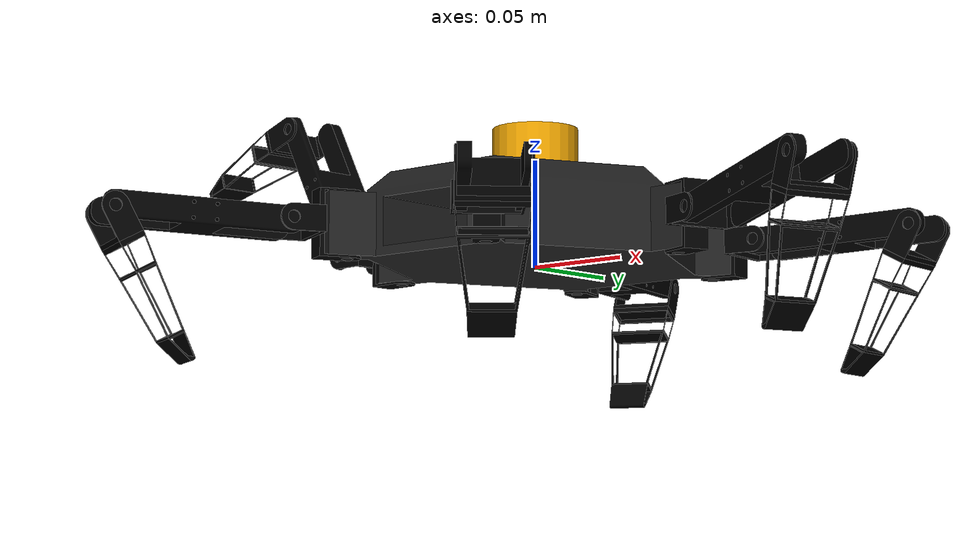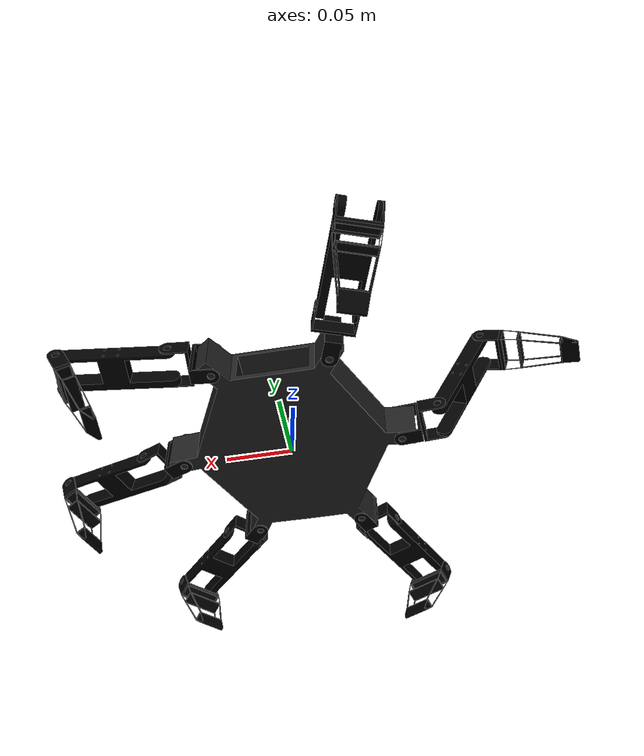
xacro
<?xml version="1.0" ?>
<robot name="hexapod" xmlns:xacro="http://www.ros.org/wiki/xacro">

  <xacro:property name="base_mass" value="1.0"/>
  <xacro:property name="base_length" value="0.3"/>
  <xacro:property name="base_width" value="0.2"/>
  <xacro:property name="base_height" value="0.1"/>

  <xacro:property name="leg_segment_mass" value="0.9"/>
  <xacro:property name="leg_connector_mass" value="0.5"/>
  <xacro:property name="leg_segment_dim" value="0.05"/>

  <xacro:property name="dummy_mass" value="0.1"/>

  <xacro:macro name="box_inertial" params="mass x y z *origin">
    <inertial>
      <xacro:insert_block name="origin"/>
      <mass value="${mass}"/>
      <inertia ixx="${(mass/12) * (y*y + z*z)}" ixy="0.0" ixz="0.0"
               iyy="${(mass/12) * (x*x + z*z)}" iyz="0.0"
               izz="${(mass/12) * (x*x + y*y)}"/>
    </inertial>
  </xacro:macro>

  <xacro:macro name="dummy_inertial">
    <inertial>
      <origin xyz="0 0 0" rpy="0 0 0"/>
      <mass value="${dummy_mass}"/>
      <inertia ixx="1e-06" ixy="0.0" ixz="0.0" iyy="1e-06" iyz="0.0" izz="1e-06"/>
    </inertial>
  </xacro:macro>

  <xacro:include filename="$(find hexapod_description)/urdf/lidar.xacro"/>
  <xacro:lidar parent_link="part_1"/>

  <link name="part_1">
    <xacro:box_inertial mass="${base_mass}" x="${base_length}" y="${base_width}" z="${base_height}">
      <origin xyz="0 0 0" rpy="0 0 0"/>
    </xacro:box_inertial>
  </link>

  <link name="part_1_2"><xacro:dummy_inertial/></link>
  <link name="part_1_3"><xacro:dummy_inertial/></link>
  <link name="part_1_4"><xacro:dummy_inertial/></link>
  <link name="part_1_5"><xacro:dummy_inertial/></link>
  <link name="part_1_6"><xacro:dummy_inertial/></link>
  <link name="part_1_7"><xacro:dummy_inertial/></link>
  <link name="part_1_8"><xacro:dummy_inertial/></link>
  <link name="part_1_9"><xacro:dummy_inertial/></link>
  <link name="part_1_10"><xacro:dummy_inertial/></link>
  <link name="part_1_11"><xacro:dummy_inertial/></link>
  <link name="part_1_12"><xacro:dummy_inertial/></link>
  <link name="part_1_13"><xacro:dummy_inertial/></link>
  <link name="part_1_14"><xacro:dummy_inertial/></link>
  <link name="part_1_15"><xacro:dummy_inertial/></link>
  <link name="part_1_16"><xacro:dummy_inertial/></link>
  <link name="part_1_17"><xacro:dummy_inertial/></link>
  <link name="part_1_18"><xacro:dummy_inertial/></link>
  <link name="part_1_19"><xacro:dummy_inertial/></link>

  <link name="part_1_3_part_1_4">
    <xacro:box_inertial mass="${leg_connector_mass}" x="${leg_segment_dim}" y="${leg_segment_dim}" z="${leg_segment_dim}"><origin xyz="-3.99804e-05 -0.000637011 -0.00633873" rpy="0 0 0"/></xacro:box_inertial>
    <visual><origin xyz="0 0 -0" rpy="-0 -0 -0"/><geometry><mesh filename="package://hexapod_description/assets/part_1__3.stl"/></geometry><material name="part_1_4_material"><color rgba="0 0 0 1"/></material></visual>
    <collision><origin xyz="0 0 -0" rpy="-0 -0 -0"/><geometry><mesh filename="package://hexapod_description/assets/part_1__3.stl"/></geometry></collision>
  </link>
  <joint name="part_1_3_part_1_4_fixed" type="fixed"><origin xyz="-0 -0.0618 0.014594" rpy="-1.5708 1.5708 0"/><parent link="part_1_3"/><child link="part_1_3_part_1_4"/><axis xyz="0 0 1"/></joint>

  <link name="part_1_3_part_1_5">
    <xacro:box_inertial mass="${leg_connector_mass}" x="${leg_segment_dim}" y="${leg_segment_dim}" z="${leg_segment_dim}"><origin xyz="0.0159244 -0 0.0040152" rpy="0 0 0"/></xacro:box_inertial>
    <visual><origin xyz="0 -0 0" rpy="0 0 -0"/><geometry><mesh filename="package://hexapod_description/assets/part_1.stl"/></geometry><material name="part_1_5_material"><color rgba="0 0 0 1"/></material></visual>
    <collision><origin xyz="0 -0 0" rpy="0 0 -0"/><geometry><mesh filename="package://hexapod_description/assets/part_1.stl"/></geometry></collision>
  </link>
  <joint name="part_1_3_part_1_5_fixed" type="fixed"><origin xyz="0 -0.015 -0.000905985" rpy="-1.5708 -1.5708 0"/><parent link="part_1_3"/><child link="part_1_3_part_1_5"/><axis xyz="0 0 1"/></joint>

  <link name="part_1_3_part_1_6">
    <xacro:box_inertial mass="${leg_connector_mass}" x="${leg_segment_dim}" y="${leg_segment_dim}" z="${leg_segment_dim}"><origin xyz="0.000220525 -2.39822e-05 -0.0159862" rpy="0 0 0"/></xacro:box_inertial>
    <visual><origin xyz="-0 0 0" rpy="0 0 0"/><geometry><mesh filename="package://hexapod_description/assets/part_1__4.stl"/></geometry><material name="part_1_6_material"><color rgba="0 0 0 1"/></material></visual>
    <collision><origin xyz="-0 0 0" rpy="0 0 0"/><geometry><mesh filename="package://hexapod_description/assets/part_1__4.stl"/></geometry></collision>
  </link>
  <joint name="part_1_3_part_1_6_fixed" type="fixed"><origin xyz="-0 -0.03 0.014594" rpy="-1.5708 -1.5708 0"/><parent link="part_1_3"/><child link="part_1_3_part_1_6"/><axis xyz="0 0 1"/></joint>

  <link name="part_1_3_part_1_7">
    <xacro:box_inertial mass="${leg_connector_mass}" x="${leg_segment_dim}" y="${leg_segment_dim}" z="${leg_segment_dim}"><origin xyz="3.90557e-05 -2.04383e-05 0.0111455" rpy="0 0 0"/></xacro:box_inertial>
    <visual><origin xyz="0 0 0" rpy="-0 0 -0"/><geometry><mesh filename="package://hexapod_description/assets/part_1__5.stl"/></geometry><material name="part_1_7_material"><color rgba="0 0 0 1"/></material></visual>
    <collision><origin xyz="0 0 0" rpy="-0 0 -0"/><geometry><mesh filename="package://hexapod_description/assets/part_1__5.stl"/></geometry></collision>
  </link>
  <joint name="part_1_3_part_1_7_fixed" type="fixed"><origin xyz="-0 -0.03 0.014594" rpy="-1.5708 -1.5708 0"/><parent link="part_1_3"/><child link="part_1_3_part_1_7"/><axis xyz="0 0 1"/></joint>

  <link name="part_1_2_part_1_3">
    <xacro:box_inertial mass="${leg_segment_mass}" x="${leg_segment_dim}" y="${leg_segment_dim}" z="${leg_segment_dim}"><origin xyz="-0.00177507 -0.006 0" rpy="0 0 0"/></xacro:box_inertial>
    <visual><origin xyz="-0 0 0" rpy="0 -0 -0"/><geometry><mesh filename="package://hexapod_description/assets/part_1__2.stl"/></geometry><material name="part_1_3_material"><color rgba="0 0 0 1"/></material></visual>
    <collision><origin xyz="-0 0 0" rpy="0 -0 -0"/><geometry><mesh filename="package://hexapod_description/assets/part_1__2.stl"/></geometry></collision>
  </link>
  <joint name="part_1_2_part_1_3_fixed" type="fixed"><origin xyz="0.005 0.04 -0.0145" rpy="-1.5708 -1.5708 0"/><parent link="part_1_2"/><child link="part_1_2_part_1_3"/><axis xyz="0 0 1"/></joint>

  <link name="part_1_7_part_1_12">
    <xacro:box_inertial mass="${leg_connector_mass}" x="${leg_segment_dim}" y="${leg_segment_dim}" z="${leg_segment_dim}"><origin xyz="-3.99804e-05 -0.000637011 -0.00633873" rpy="0 0 0"/></xacro:box_inertial>
    <visual><origin xyz="0 -0 0" rpy="0 -0 -0"/><geometry><mesh filename="package://hexapod_description/assets/part_1__3.stl"/></geometry><material name="part_1_12_material"><color rgba="0 0 0 1"/></material></visual>
    <collision><origin xyz="0 -0 0" rpy="0 -0 -0"/><geometry><mesh filename="package://hexapod_description/assets/part_1__3.stl"/></geometry></collision>
  </link>
  <joint name="part_1_7_part_1_12_fixed" type="fixed"><origin xyz="-0 -0.0618 0.014594" rpy="-1.5708 1.5708 0"/><parent link="part_1_7"/><child link="part_1_7_part_1_12"/><axis xyz="0 0 1"/></joint>

  <link name="part_1_7_part_1_13">
    <xacro:box_inertial mass="${leg_connector_mass}" x="${leg_segment_dim}" y="${leg_segment_dim}" z="${leg_segment_dim}"><origin xyz="0.000220525 -2.39822e-05 -0.0159862" rpy="0 0 0"/></xacro:box_inertial>
    <visual><origin xyz="0 0 0" rpy="0 0 -0"/><geometry><mesh filename="package://hexapod_description/assets/part_1__4.stl"/></geometry><material name="part_1_13_material"><color rgba="0 0 0 1"/></material></visual>
    <collision><origin xyz="0 0 0" rpy="0 0 -0"/><geometry><mesh filename="package://hexapod_description/assets/part_1__4.stl"/></geometry></collision>
  </link>
  <joint name="part_1_7_part_1_13_fixed" type="fixed"><origin xyz="0 -0.03 0.014594" rpy="-1.5708 -1.5708 0"/><parent link="part_1_7"/><child link="part_1_7_part_1_13"/><axis xyz="0 0 1"/></joint>

  <link name="part_1_7_part_1_14">
    <xacro:box_inertial mass="${leg_connector_mass}" x="${leg_segment_dim}" y="${leg_segment_dim}" z="${leg_segment_dim}"><origin xyz="3.90557e-05 -2.04383e-05 0.0111455" rpy="0 0 0"/></xacro:box_inertial>
    <visual><origin xyz="0 0 0" rpy="-0 0 -0"/><geometry><mesh filename="package://hexapod_description/assets/part_1__5.stl"/></geometry><material name="part_1_14_material"><color rgba="0 0 0 1"/></material></visual>
    <collision><origin xyz="0 0 0" rpy="-0 0 -0"/><geometry><mesh filename="package://hexapod_description/assets/part_1__5.stl"/></geometry></collision>
  </link>
  <joint name="part_1_7_part_1_14_fixed" type="fixed"><origin xyz="0 -0.03 0.014594" rpy="-1.5708 -1.5708 0"/><parent link="part_1_7"/><child link="part_1_7_part_1_14"/><axis xyz="0 0 1"/></joint>

  <link name="part_1_7_part_1_15">
    <xacro:box_inertial mass="${leg_connector_mass}" x="${leg_segment_dim}" y="${leg_segment_dim}" z="${leg_segment_dim}"><origin xyz="0.0159244 0 0.0040152" rpy="0 0 0"/></xacro:box_inertial>
    <visual><origin xyz="0 0 0" rpy="0 0 0"/><geometry><mesh filename="package://hexapod_description/assets/part_1.stl"/></geometry><material name="part_1_15_material"><color rgba="0 0 0 1"/></material></visual>
    <collision><origin xyz="0 0 0" rpy="0 0 0"/><geometry><mesh filename="package://hexapod_description/assets/part_1.stl"/></geometry></collision>
  </link>
  <joint name="part_1_7_part_1_15_fixed" type="fixed"><origin xyz="0 -0.015 -0.000905985" rpy="-1.5708 -1.5708 0"/><parent link="part_1_7"/><child link="part_1_7_part_1_15"/><axis xyz="0 0 1"/></joint>

  <link name="part_1_6_part_1_11">
    <xacro:box_inertial mass="${leg_segment_mass}" x="${leg_segment_dim}" y="${leg_segment_dim}" z="${leg_segment_dim}"><origin xyz="-0.00177507 -0.006 -0" rpy="0 0 0"/></xacro:box_inertial>
    <visual><origin xyz="0 0 -0" rpy="0 -0 -0"/><geometry><mesh filename="package://hexapod_description/assets/part_1__2.stl"/></geometry><material name="part_1_11_material"><color rgba="0 0 0 1"/></material></visual>
    <collision><origin xyz="0 0 -0" rpy="0 -0 -0"/><geometry><mesh filename="package://hexapod_description/assets/part_1__2.stl"/></geometry></collision>
  </link>
  <joint name="part_1_6_part_1_11_fixed" type="fixed"><origin xyz="0.005 0.04 -0.0145" rpy="-1.5708 -1.5708 0"/><parent link="part_1_6"/><child link="part_1_6_part_1_11"/><axis xyz="0 0 1"/></joint>

  <link name="part_1_5_part_1_9">
    <xacro:box_inertial mass="${leg_connector_mass}" x="${leg_segment_dim}" y="${leg_segment_dim}" z="${leg_segment_dim}"><origin xyz="0.0159244 0 0.0040152" rpy="0 0 0"/></xacro:box_inertial>
    <visual><origin xyz="-0 0 0" rpy="0 -0 0"/><geometry><mesh filename="package://hexapod_description/assets/part_1.stl"/></geometry><material name="part_1_9_material"><color rgba="0 0 0 1"/></material></visual>
    <collision><origin xyz="-0 0 0" rpy="0 -0 0"/><geometry><mesh filename="package://hexapod_description/assets/part_1.stl"/></geometry></collision>
  </link>
  <joint name="part_1_5_part_1_9_fixed" type="fixed"><origin xyz="-0.00903886 0.0119708 -0.000905985" rpy="2.21754 -1.5708 0"/><parent link="part_1_5"/><child link="part_1_5_part_1_9"/><axis xyz="0 0 1"/></joint>

  <link name="part_1_5_part_1_10">
    <xacro:box_inertial mass="${leg_connector_mass}" x="${leg_segment_dim}" y="${leg_segment_dim}" z="${leg_segment_dim}"><origin xyz="0.0159244 0 0.0040152" rpy="0 0 0"/></xacro:box_inertial>
    <visual><origin xyz="-0 0 0" rpy="-0 -0 -0"/><geometry><mesh filename="package://hexapod_description/assets/part_1.stl"/></geometry><material name="part_1_10_material"><color rgba="0 0 0 1"/></material></visual>
    <collision><origin xyz="-0 0 0" rpy="-0 -0 -0"/><geometry><mesh filename="package://hexapod_description/assets/part_1.stl"/></geometry></collision>
  </link>
  <joint name="part_1_5_part_1_10_fixed" type="fixed"><origin xyz="-0.0214086 0.00263061 0.014594" rpy="-1.5708 -0 0.646743"/><parent link="part_1_5"/><child link="part_1_5_part_1_10"/><axis xyz="0 0 1"/></joint>

  <link name="part_1_10_part_1_19">
    <xacro:box_inertial mass="${leg_connector_mass}" x="${leg_segment_dim}" y="${leg_segment_dim}" z="${leg_segment_dim}"><origin xyz="-3.99804e-05 -0.000637011 -0.00633873" rpy="0 0 0"/></xacro:box_inertial>
    <visual><origin xyz="0 -0 -0" rpy="0 0 0"/><geometry><mesh filename="package://hexapod_description/assets/part_1__3.stl"/></geometry><material name="part_1_19_material"><color rgba="0 0 0 1"/></material></visual>
    <collision><origin xyz="0 -0 -0" rpy="0 0 0"/><geometry><mesh filename="package://hexapod_description/assets/part_1__3.stl"/></geometry></collision>
  </link>
  <joint name="part_1_10_part_1_19_fixed" type="fixed"><origin xyz="-0 -0.0618 0.014594" rpy="-1.5708 1.5708 0"/><parent link="part_1_10"/><child link="part_1_10_part_1_19"/><axis xyz="0 0 1"/></joint>

  <link name="part_1_10_part_1_20">
    <xacro:box_inertial mass="${leg_connector_mass}" x="${leg_segment_dim}" y="${leg_segment_dim}" z="${leg_segment_dim}"><origin xyz="0.000220525 -2.39822e-05 -0.0159862" rpy="0 0 0"/></xacro:box_inertial>
    <visual><origin xyz="0 0 0" rpy="0 -0 0"/><geometry><mesh filename="package://hexapod_description/assets/part_1__4.stl"/></geometry><material name="part_1_20_material"><color rgba="0 0 0 1"/></material></visual>
    <collision><origin xyz="0 0 0" rpy="0 -0 0"/><geometry><mesh filename="package://hexapod_description/assets/part_1__4.stl"/></geometry></collision>
  </link>
  <joint name="part_1_10_part_1_20_fixed" type="fixed"><origin xyz="-0 -0.03 0.014594" rpy="-1.5708 -1.5708 0"/><parent link="part_1_10"/><child link="part_1_10_part_1_20"/><axis xyz="0 0 1"/></joint>

  <link name="part_1_10_part_1_21">
    <xacro:box_inertial mass="${leg_connector_mass}" x="${leg_segment_dim}" y="${leg_segment_dim}" z="${leg_segment_dim}"><origin xyz="0.0159244 0 0.0040152" rpy="0 0 0"/></xacro:box_inertial>
    <visual><origin xyz="0 0 0" rpy="0 -0 -0"/><geometry><mesh filename="package://hexapod_description/assets/part_1.stl"/></geometry><material name="part_1_21_material"><color rgba="0 0 0 1"/></material></visual>
    <collision><origin xyz="0 0 0" rpy="0 -0 -0"/><geometry><mesh filename="package://hexapod_description/assets/part_1.stl"/></geometry></collision>
  </link>
  <joint name="part_1_10_part_1_21_fixed" type="fixed"><origin xyz="0 -0.015 -0.000905985" rpy="-1.5708 -1.5708 0"/><parent link="part_1_10"/><child link="part_1_10_part_1_21"/><axis xyz="0 0 1"/></joint>

  <link name="part_1_10_part_1_22">
    <xacro:box_inertial mass="${leg_connector_mass}" x="${leg_segment_dim}" y="${leg_segment_dim}" z="${leg_segment_dim}"><origin xyz="3.90557e-05 -2.04383e-05 0.0111455" rpy="0 0 0"/></xacro:box_inertial>
    <visual><origin xyz="0 0 0" rpy="-0 -0 0"/><geometry><mesh filename="package://hexapod_description/assets/part_1__5.stl"/></geometry><material name="part_1_22_material"><color rgba="0 0 0 1"/></material></visual>
    <collision><origin xyz="0 0 0" rpy="-0 -0 0"/><geometry><mesh filename="package://hexapod_description/assets/part_1__5.stl"/></geometry></collision>
  </link>
  <joint name="part_1_10_part_1_22_fixed" type="fixed"><origin xyz="0 -0.03 0.014594" rpy="-1.5708 -1.5708 0"/><parent link="part_1_10"/><child link="part_1_10_part_1_22"/><axis xyz="0 0 1"/></joint>

  <link name="part_1_9_part_1_18">
    <xacro:box_inertial mass="${leg_segment_mass}" x="${leg_segment_dim}" y="${leg_segment_dim}" z="${leg_segment_dim}"><origin xyz="-0.00177507 -0.006 0" rpy="0 0 0"/></xacro:box_inertial>
    <visual><origin xyz="-0 -0 0" rpy="0 -0 -0"/><geometry><mesh filename="package://hexapod_description/assets/part_1__2.stl"/></geometry><material name="part_1_18_material"><color rgba="0 0 0 1"/></material></visual>
    <collision><origin xyz="-0 -0 0" rpy="0 -0 -0"/><geometry><mesh filename="package://hexapod_description/assets/part_1__2.stl"/></geometry></collision>
  </link>
  <joint name="part_1_9_part_1_18_fixed" type="fixed"><origin xyz="0.005 0.04 -0.0145" rpy="-1.5708 -1.5708 0"/><parent link="part_1_9"/><child link="part_1_9_part_1_18"/><axis xyz="0 0 1"/></joint>

  <link name="part_1_8_part_1_16">
    <xacro:box_inertial mass="${leg_connector_mass}" x="${leg_segment_dim}" y="${leg_segment_dim}" z="${leg_segment_dim}"><origin xyz="0.0159244 0 0.0040152" rpy="0 0 0"/></xacro:box_inertial>
    <visual><origin xyz="0 0 -0" rpy="0 0 0"/><geometry><mesh filename="package://hexapod_description/assets/part_1.stl"/></geometry><material name="part_1_16_material"><color rgba="0 0 0 1"/></material></visual>
    <collision><origin xyz="0 0 -0" rpy="0 0 0"/><geometry><mesh filename="package://hexapod_description/assets/part_1.stl"/></geometry></collision>
  </link>
  <joint name="part_1_8_part_1_16_fixed" type="fixed"><origin xyz="0.00976109 -0.0192346 0.014594" rpy="-1.5708 0 2.80941"/><parent link="part_1_8"/><child link="part_1_8_part_1_16"/><axis xyz="0 0 1"/></joint>

  <link name="part_1_8_part_1_17">
    <xacro:box_inertial mass="${leg_connector_mass}" x="${leg_segment_dim}" y="${leg_segment_dim}" z="${leg_segment_dim}"><origin xyz="0.0159244 0 0.0040152" rpy="0 0 0"/></xacro:box_inertial>
    <visual><origin xyz="-0 0 -0" rpy="-0 -0 0"/><geometry><mesh filename="package://hexapod_description/assets/part_1.stl"/></geometry><material name="part_1_17_material"><color rgba="0 0 0 1"/></material></visual>
    <collision><origin xyz="-0 0 -0" rpy="-0 -0 0"/><geometry><mesh filename="package://hexapod_description/assets/part_1.stl"/></geometry></collision>
  </link>
  <joint name="part_1_8_part_1_17_fixed" type="fixed"><origin xyz="-0.00489158 -0.01418 -0.000905985" rpy="-1.90298 -1.5708 0"/><parent link="part_1_8"/><child link="part_1_8_part_1_17"/><axis xyz="0 0 1"/></joint>

  <link name="part_1_13_part_1_26">
    <xacro:box_inertial mass="${leg_connector_mass}" x="${leg_segment_dim}" y="${leg_segment_dim}" z="${leg_segment_dim}"><origin xyz="3.90557e-05 -2.04383e-05 0.0111455" rpy="0 0 0"/></xacro:box_inertial>
    <visual><origin xyz="-0 -0 0" rpy="0 0 -0"/><geometry><mesh filename="package://hexapod_description/assets/part_1__5.stl"/></geometry><material name="part_1_26_material"><color rgba="0 0 0 1"/></material></visual>
    <collision><origin xyz="-0 -0 0" rpy="0 0 -0"/><geometry><mesh filename="package://hexapod_description/assets/part_1__5.stl"/></geometry></collision>
  </link>
  <joint name="part_1_13_part_1_26_fixed" type="fixed"><origin xyz="-0 -0.03 0.014594" rpy="-1.5708 -1.5708 0"/><parent link="part_1_13"/><child link="part_1_13_part_1_26"/><axis xyz="0 0 1"/></joint>

  <link name="part_1_13_part_1_27">
    <xacro:box_inertial mass="${leg_connector_mass}" x="${leg_segment_dim}" y="${leg_segment_dim}" z="${leg_segment_dim}"><origin xyz="-3.99804e-05 -0.000637011 -0.00633873" rpy="0 0 0"/></xacro:box_inertial>
    <visual><origin xyz="0 0 0" rpy="0 0 -0"/><geometry><mesh filename="package://hexapod_description/assets/part_1__3.stl"/></geometry><material name="part_1_27_material"><color rgba="0 0 0 1"/></material></visual>
    <collision><origin xyz="0 0 0" rpy="0 0 -0"/><geometry><mesh filename="package://hexapod_description/assets/part_1__3.stl"/></geometry></collision>
  </link>
  <joint name="part_1_13_part_1_27_fixed" type="fixed"><origin xyz="-0 -0.0618 0.014594" rpy="-1.5708 1.5708 0"/><parent link="part_1_13"/><child link="part_1_13_part_1_27"/><axis xyz="0 0 1"/></joint>

  <link name="part_1_13_part_1_28">
    <xacro:box_inertial mass="${leg_connector_mass}" x="${leg_segment_dim}" y="${leg_segment_dim}" z="${leg_segment_dim}"><origin xyz="0.000220525 -2.39822e-05 -0.0159862" rpy="0 0 0"/></xacro:box_inertial>
    <visual><origin xyz="0 -0 0" rpy="0 -0 0"/><geometry><mesh filename="package://hexapod_description/assets/part_1__4.stl"/></geometry><material name="part_1_28_material"><color rgba="0 0 0 1"/></material></visual>
    <collision><origin xyz="0 -0 0" rpy="0 -0 0"/><geometry><mesh filename="package://hexapod_description/assets/part_1__4.stl"/></geometry></collision>
  </link>
  <joint name="part_1_13_part_1_28_fixed" type="fixed"><origin xyz="-0 -0.03 0.014594" rpy="-1.5708 -1.5708 0"/><parent link="part_1_13"/><child link="part_1_13_part_1_28"/><axis xyz="0 0 1"/></joint>

  <link name="part_1_13_part_1_29">
    <xacro:box_inertial mass="${leg_connector_mass}" x="${leg_segment_dim}" y="${leg_segment_dim}" z="${leg_segment_dim}"><origin xyz="0.0159244 -0 0.0040152" rpy="0 0 0"/></xacro:box_inertial>
    <visual><origin xyz="-0 -0 0" rpy="0 -0 0"/><geometry><mesh filename="package://hexapod_description/assets/part_1.stl"/></geometry><material name="part_1_29_material"><color rgba="0 0 0 1"/></material></visual>
    <collision><origin xyz="-0 -0 0" rpy="0 -0 0"/><geometry><mesh filename="package://hexapod_description/assets/part_1.stl"/></geometry></collision>
  </link>
  <joint name="part_1_13_part_1_29_fixed" type="fixed"><origin xyz="0 -0.015 -0.000905985" rpy="-1.5708 -1.5708 0"/><parent link="part_1_13"/><child link="part_1_13_part_1_29"/><axis xyz="0 0 1"/></joint>

  <link name="part_1_12_part_1_25">
    <xacro:box_inertial mass="${leg_segment_mass}" x="${leg_segment_dim}" y="${leg_segment_dim}" z="${leg_segment_dim}"><origin xyz="-0.00177507 -0.006 -0" rpy="0 0 0"/></xacro:box_inertial>
    <visual><origin xyz="0 -0 -0" rpy="-0 0 -0"/><geometry><mesh filename="package://hexapod_description/assets/part_1__2.stl"/></geometry><material name="part_1_25_material"><color rgba="0 0 0 1"/></material></visual>
    <collision><origin xyz="0 -0 -0" rpy="-0 0 -0"/><geometry><mesh filename="package://hexapod_description/assets/part_1__2.stl"/></geometry></collision>
  </link>
  <joint name="part_1_12_part_1_25_fixed" type="fixed"><origin xyz="0.005 0.04 -0.0145" rpy="-1.5708 -1.5708 0"/><parent link="part_1_12"/><child link="part_1_12_part_1_25"/><axis xyz="0 0 1"/></joint>

  <link name="part_1_11_part_1_23">
    <xacro:box_inertial mass="${leg_connector_mass}" x="${leg_segment_dim}" y="${leg_segment_dim}" z="${leg_segment_dim}"><origin xyz="0.0159244 0 0.0040152" rpy="0 0 0"/></xacro:box_inertial>
    <visual><origin xyz="-0 0 -0" rpy="-0 -0 -0"/><geometry><mesh filename="package://hexapod_description/assets/part_1.stl"/></geometry><material name="part_1_23_material"><color rgba="0 0 0 1"/></material></visual>
    <collision><origin xyz="-0 0 -0" rpy="-0 -0 -0"/><geometry><mesh filename="package://hexapod_description/assets/part_1.stl"/></geometry></collision>
  </link>
  <joint name="part_1_11_part_1_23_fixed" type="fixed"><origin xyz="0.0102573 0.0109447 -0.000905985" rpy="0.817807 -1.5708 0"/><parent link="part_1_11"/><child link="part_1_11_part_1_23"/><axis xyz="0 0 1"/></joint>

  <link name="part_1_11_part_1_24">
    <xacro:box_inertial mass="${leg_connector_mass}" x="${leg_segment_dim}" y="${leg_segment_dim}" z="${leg_segment_dim}"><origin xyz="0.0159244 0 0.0040152" rpy="0 0 0"/></xacro:box_inertial>
    <visual><origin xyz="0 0 0" rpy="-0 -0 0"/><geometry><mesh filename="package://hexapod_description/assets/part_1.stl"/></geometry><material name="part_1_24_material"><color rgba="0 0 0 1"/></material></visual>
    <collision><origin xyz="0 0 0" rpy="-0 -0 0"/><geometry><mesh filename="package://hexapod_description/assets/part_1.stl"/></geometry></collision>
  </link>
  <joint name="part_1_11_part_1_24_fixed" type="fixed"><origin xyz="-0.0010522 0.021544 0.014594" rpy="-1.5708 -0 -0.752989"/><parent link="part_1_11"/><child link="part_1_11_part_1_24"/><axis xyz="0 0 1"/></joint>

  <link name="part_1_16_part_1_33">
    <xacro:box_inertial mass="${leg_connector_mass}" x="${leg_segment_dim}" y="${leg_segment_dim}" z="${leg_segment_dim}"><origin xyz="3.90557e-05 -2.04383e-05 0.0111455" rpy="0 0 0"/></xacro:box_inertial>
    <visual><origin xyz="-0 0 0" rpy="0 -0 0"/><geometry><mesh filename="package://hexapod_description/assets/part_1__5.stl"/></geometry><material name="part_1_33_material"><color rgba="0 0 0 1"/></material></visual>
    <collision><origin xyz="-0 0 0" rpy="0 -0 0"/><geometry><mesh filename="package://hexapod_description/assets/part_1__5.stl"/></geometry></collision>
  </link>
  <joint name="part_1_16_part_1_33_fixed" type="fixed"><origin xyz="-0 -0.03 0.014594" rpy="-1.5708 -1.5708 0"/><parent link="part_1_16"/><child link="part_1_16_part_1_33"/><axis xyz="0 0 1"/></joint>

  <link name="part_1_16_part_1_34">
    <xacro:box_inertial mass="${leg_connector_mass}" x="${leg_segment_dim}" y="${leg_segment_dim}" z="${leg_segment_dim}"><origin xyz="0.0159244 -0 0.0040152" rpy="0 0 0"/></xacro:box_inertial>
    <visual><origin xyz="0 -0 0" rpy="0 0 -0"/><geometry><mesh filename="package://hexapod_description/assets/part_1.stl"/></geometry><material name="part_1_34_material"><color rgba="0 0 0 1"/></material></visual>
    <collision><origin xyz="0 -0 0" rpy="0 0 -0"/><geometry><mesh filename="package://hexapod_description/assets/part_1.stl"/></geometry></collision>
  </link>
  <joint name="part_1_16_part_1_34_fixed" type="fixed"><origin xyz="-0 -0.015 -0.000905985" rpy="-1.5708 -1.5708 0"/><parent link="part_1_16"/><child link="part_1_16_part_1_34"/><axis xyz="0 0 1"/></joint>

  <link name="part_1_16_part_1_35">
    <xacro:box_inertial mass="${leg_connector_mass}" x="${leg_segment_dim}" y="${leg_segment_dim}" z="${leg_segment_dim}"><origin xyz="0.000220525 -2.39822e-05 -0.0159862" rpy="0 0 0"/></xacro:box_inertial>
    <visual><origin xyz="-0 0 0" rpy="0 0 -0"/><geometry><mesh filename="package://hexapod_description/assets/part_1__4.stl"/></geometry><material name="part_1_35_material"><color rgba="0 0 0 1"/></material></visual>
    <collision><origin xyz="-0 0 0" rpy="0 0 -0"/><geometry><mesh filename="package://hexapod_description/assets/part_1__4.stl"/></geometry></collision>
  </link>
  <joint name="part_1_16_part_1_35_fixed" type="fixed"><origin xyz="-0 -0.03 0.014594" rpy="-1.5708 -1.5708 0"/><parent link="part_1_16"/><child link="part_1_16_part_1_35"/><axis xyz="0 0 1"/></joint>

  <link name="part_1_16_part_1_36">
    <xacro:box_inertial mass="${leg_connector_mass}" x="${leg_segment_dim}" y="${leg_segment_dim}" z="${leg_segment_dim}"><origin xyz="-3.99804e-05 -0.000637011 -0.00633873" rpy="0 0 0"/></xacro:box_inertial>
    <visual><origin xyz="-0 0 0" rpy="0 -0 -0"/><geometry><mesh filename="package://hexapod_description/assets/part_1__3.stl"/></geometry><material name="part_1_36_material"><color rgba="0 0 0 1"/></material></visual>
    <collision><origin xyz="-0 0 0" rpy="0 -0 -0"/><geometry><mesh filename="package://hexapod_description/assets/part_1__3.stl"/></geometry></collision>
  </link>
  <joint name="part_1_16_part_1_36_fixed" type="fixed"><origin xyz="-0 -0.0618 0.014594" rpy="-1.5708 1.5708 0"/><parent link="part_1_16"/><child link="part_1_16_part_1_36"/><axis xyz="0 0 1"/></joint>

  <link name="part_1_15_part_1_32">
    <xacro:box_inertial mass="${leg_segment_mass}" x="${leg_segment_dim}" y="${leg_segment_dim}" z="${leg_segment_dim}"><origin xyz="-0.00177507 -0.006 -0" rpy="0 0 0"/></xacro:box_inertial>
    <visual><origin xyz="-0 0 0" rpy="-0 0 0"/><geometry><mesh filename="package://hexapod_description/assets/part_1__2.stl"/></geometry><material name="part_1_32_material"><color rgba="0 0 0 1"/></material></visual>
    <collision><origin xyz="-0 0 0" rpy="-0 0 0"/><geometry><mesh filename="package://hexapod_description/assets/part_1__2.stl"/></geometry></collision>
  </link>
  <joint name="part_1_15_part_1_32_fixed" type="fixed"><origin xyz="0.005 0.04 -0.0145" rpy="-1.5708 -1.5708 0"/><parent link="part_1_15"/><child link="part_1_15_part_1_32"/><axis xyz="0 0 1"/></joint>

  <link name="part_1_14_part_1_30">
    <xacro:box_inertial mass="${leg_connector_mass}" x="${leg_segment_dim}" y="${leg_segment_dim}" z="${leg_segment_dim}"><origin xyz="0.0159244 0 0.0040152" rpy="0 0 0"/></xacro:box_inertial>
    <visual><origin xyz="0 0 0" rpy="-0 -0 -0"/><geometry><mesh filename="package://hexapod_description/assets/part_1.stl"/></geometry><material name="part_1_30_material"><color rgba="0 0 0 1"/></material></visual>
    <collision><origin xyz="0 0 0" rpy="-0 -0 -0"/><geometry><mesh filename="package://hexapod_description/assets/part_1.stl"/></geometry></collision>
  </link>
  <joint name="part_1_14_part_1_30_fixed" type="fixed"><origin xyz="0.0139417 0.0055343 -0.000905985" rpy="0.377882 -1.5708 0"/><parent link="part_1_14"/><child link="part_1_14_part_1_30"/><axis xyz="0 0 1"/></joint>

  <link name="part_1_14_part_1_31">
    <xacro:box_inertial mass="${leg_connector_mass}" x="${leg_segment_dim}" y="${leg_segment_dim}" z="${leg_segment_dim}"><origin xyz="0.0159244 0 0.0040152" rpy="0 0 0"/></xacro:box_inertial>
    <visual><origin xyz="0 0 0" rpy="0 0 -0"/><geometry><mesh filename="package://hexapod_description/assets/part_1.stl"/></geometry><material name="part_1_31_material"><color rgba="0 0 0 1"/></material></visual>
    <collision><origin xyz="0 0 0" rpy="0 0 -0"/><geometry><mesh filename="package://hexapod_description/assets/part_1.stl"/></geometry></collision>
  </link>
  <joint name="part_1_14_part_1_31_fixed" type="fixed"><origin xyz="0.00822295 0.0199407 0.014594" rpy="-1.5708 -0 -1.19291"/><parent link="part_1_14"/><child link="part_1_14_part_1_31"/><axis xyz="0 0 1"/></joint>

  <link name="part_1_19_part_1_40">
    <xacro:box_inertial mass="${leg_connector_mass}" x="${leg_segment_dim}" y="${leg_segment_dim}" z="${leg_segment_dim}"><origin xyz="0.0159244 0 0.0040152" rpy="0 0 0"/></xacro:box_inertial>
    <visual><origin xyz="0 0 0" rpy="0 0 -0"/><geometry><mesh filename="package://hexapod_description/assets/part_1.stl"/></geometry><material name="part_1_40_material"><color rgba="0 0 0 1"/></material></visual>
    <collision><origin xyz="0 0 0" rpy="0 0 -0"/><geometry><mesh filename="package://hexapod_description/assets/part_1.stl"/></geometry></collision>
  </link>
  <joint name="part_1_19_part_1_40_fixed" type="fixed"><origin xyz="0 -0.015 -0.000905985" rpy="-1.5708 -1.5708 0"/><parent link="part_1_19"/><child link="part_1_19_part_1_40"/><axis xyz="0 0 1"/></joint>

  <link name="part_1_19_part_1_41">
    <xacro:box_inertial mass="${leg_connector_mass}" x="${leg_segment_dim}" y="${leg_segment_dim}" z="${leg_segment_dim}"><origin xyz="3.90557e-05 -2.04383e-05 0.0111455" rpy="0 0 0"/></xacro:box_inertial>
    <visual><origin xyz="-0 0 0" rpy="0 -0 -0"/><geometry><mesh filename="package://hexapod_description/assets/part_1__5.stl"/></geometry><material name="part_1_41_material"><color rgba="0 0 0 1"/></material></visual>
    <collision><origin xyz="-0 0 0" rpy="0 -0 -0"/><geometry><mesh filename="package://hexapod_description/assets/part_1__5.stl"/></geometry></collision>
  </link>
  <joint name="part_1_19_part_1_41_fixed" type="fixed"><origin xyz="0 -0.03 0.014594" rpy="-1.5708 -1.5708 0"/><parent link="part_1_19"/><child link="part_1_19_part_1_41"/><axis xyz="0 0 1"/></joint>

  <link name="part_1_19_part_1_42">
    <xacro:box_inertial mass="${leg_connector_mass}" x="${leg_segment_dim}" y="${leg_segment_dim}" z="${leg_segment_dim}"><origin xyz="-3.99804e-05 -0.000637011 -0.00633873" rpy="0 0 0"/></xacro:box_inertial>
    <visual><origin xyz="0 0 0" rpy="0 -0 -0"/><geometry><mesh filename="package://hexapod_description/assets/part_1__3.stl"/></geometry><material name="part_1_42_material"><color rgba="0 0 0 1"/></material></visual>
    <collision><origin xyz="0 0 0" rpy="0 -0 -0"/><geometry><mesh filename="package://hexapod_description/assets/part_1__3.stl"/></geometry></collision>
  </link>
  <joint name="part_1_19_part_1_42_fixed" type="fixed"><origin xyz="-0 -0.0618 0.014594" rpy="-1.5708 1.5708 0"/><parent link="part_1_19"/><child link="part_1_19_part_1_42"/><axis xyz="0 0 1"/></joint>

  <link name="part_1_19_part_1_43">
    <xacro:box_inertial mass="${leg_connector_mass}" x="${leg_segment_dim}" y="${leg_segment_dim}" z="${leg_segment_dim}"><origin xyz="0.000220525 -2.39822e-05 -0.0159862" rpy="0 0 0"/></xacro:box_inertial>
    <visual><origin xyz="0 0 0" rpy="-0 -0 0"/><geometry><mesh filename="package://hexapod_description/assets/part_1__4.stl"/></geometry><material name="part_1_43_material"><color rgba="0 0 0 1"/></material></visual>
    <collision><origin xyz="0 0 0" rpy="-0 -0 0"/><geometry><mesh filename="package://hexapod_description/assets/part_1__4.stl"/></geometry></collision>
  </link>
  <joint name="part_1_19_part_1_43_fixed" type="fixed"><origin xyz="-0 -0.03 0.014594" rpy="-1.5708 -1.5708 0"/><parent link="part_1_19"/><child link="part_1_19_part_1_43"/><axis xyz="0 0 1"/></joint>

  <link name="part_1_18_part_1_39">
    <xacro:box_inertial mass="${leg_segment_mass}" x="${leg_segment_dim}" y="${leg_segment_dim}" z="${leg_segment_dim}"><origin xyz="-0.00177507 -0.006 -0" rpy="0 0 0"/></xacro:box_inertial>
    <visual><origin xyz="0 0 0" rpy="0 -0 -0"/><geometry><mesh filename="package://hexapod_description/assets/part_1__2.stl"/></geometry><material name="part_1_39_material"><color rgba="0 0 0 1"/></material></visual>
    <collision><origin xyz="0 0 0" rpy="0 -0 -0"/><geometry><mesh filename="package://hexapod_description/assets/part_1__2.stl"/></geometry></collision>
  </link>
  <joint name="part_1_18_part_1_39_fixed" type="fixed"><origin xyz="0.005 0.04 -0.0145" rpy="-1.5708 -1.5708 0"/><parent link="part_1_18"/><child link="part_1_18_part_1_39"/><axis xyz="0 0 1"/></joint>

  <link name="part_1_17_part_1_37">
    <xacro:box_inertial mass="${leg_connector_mass}" x="${leg_segment_dim}" y="${leg_segment_dim}" z="${leg_segment_dim}"><origin xyz="0.0159244 0 0.0040152" rpy="0 0 0"/></xacro:box_inertial>
    <visual><origin xyz="-0 0 0" rpy="0 0 -0"/><geometry><mesh filename="package://hexapod_description/assets/part_1.stl"/></geometry><material name="part_1_37_material"><color rgba="0 0 0 1"/></material></visual>
    <collision><origin xyz="-0 0 0" rpy="0 0 -0"/><geometry><mesh filename="package://hexapod_description/assets/part_1.stl"/></geometry></collision>
  </link>
  <joint name="part_1_17_part_1_37_fixed" type="fixed"><origin xyz="0.014924 -0.00150826 -0.000905985" rpy="-0.100721 -1.5708 0"/><parent link="part_1_17"/><child link="part_1_17_part_1_37"/><axis xyz="0 0 1"/></joint>

  <link name="part_1_17_part_1_38">
    <xacro:box_inertial mass="${leg_connector_mass}" x="${leg_segment_dim}" y="${leg_segment_dim}" z="${leg_segment_dim}"><origin xyz="0.0159244 0 0.0040152" rpy="0 0 0"/></xacro:box_inertial>
    <visual><origin xyz="-0 0 0" rpy="0 -0 0"/><geometry><mesh filename="package://hexapod_description/assets/part_1.stl"/></geometry><material name="part_1_38_material"><color rgba="0 0 0 1"/></material></visual>
    <collision><origin xyz="-0 0 0" rpy="0 -0 0"/><geometry><mesh filename="package://hexapod_description/assets/part_1.stl"/></geometry></collision>
  </link>
  <joint name="part_1_17_part_1_38_fixed" type="fixed"><origin xyz="0.0164825 0.0139132 0.014594" rpy="-1.5708 0 -1.67152"/><parent link="part_1_17"/><child link="part_1_17_part_1_38"/><axis xyz="0 0 1"/></joint>

  <link name="part_1_4_part_1_8">
    <xacro:box_inertial mass="${base_mass}" x="0.1" y="0.1" z="0.05"><origin xyz="-2.9e-11 4.21363e-05 0.0203307" rpy="0 0 0"/></xacro:box_inertial>
    <visual><origin xyz="0 0 0" rpy="0 -0 0"/><geometry><mesh filename="package://hexapod_description/assets/part_1__6.stl"/></geometry><material name="part_1_8_material"><color rgba="0.121569 0.121569 0.121569 1"/></material></visual>
    <collision><origin xyz="0 0 0" rpy="0 -0 0"/><geometry><mesh filename="package://hexapod_description/assets/part_1__6.stl"/></geometry></collision>
  </link>
  <joint name="part_1_4_part_1_8_fixed" type="fixed"><origin xyz="-0.000689461 -0.0918212 -0.029" rpy="0 0 -2.67995"/><parent link="part_1_4"/><child link="part_1_4_part_1_8"/><axis xyz="0 0 1"/></joint>

  <link name="part_1_part_1">
    <xacro:box_inertial mass="${leg_connector_mass}" x="${leg_segment_dim}" y="${leg_segment_dim}" z="${leg_segment_dim}"><origin xyz="0.0159244 0 0.0040152" rpy="0 0 0"/></xacro:box_inertial>
    <visual><origin xyz="0 0 0" rpy="-0 0 0"/><geometry><mesh filename="package://hexapod_description/assets/part_1.stl"/></geometry><material name="part_1_material"><color rgba="0 0 0 1"/></material></visual>
    <collision><origin xyz="0 0 0" rpy="-0 0 0"/><geometry><mesh filename="package://hexapod_description/assets/part_1.stl"/></geometry></collision>
  </link>
  <joint name="part_1_part_1_fixed" type="fixed"><origin xyz="-0.0481978 -0.0953321 0.029906" rpy="-1.10915 1.5708 0"/><parent link="part_1"/><child link="part_1_part_1"/><axis xyz="0 0 1"/></joint>

  <link name="part_1_part_1_2">
    <xacro:box_inertial mass="${leg_connector_mass}" x="${leg_segment_dim}" y="${leg_segment_dim}" z="${leg_segment_dim}"><origin xyz="0.0159244 -0 0.0040152" rpy="0 0 0"/></xacro:box_inertial>
    <visual><origin xyz="0 -0 0" rpy="0 -0 0"/><geometry><mesh filename="package://hexapod_description/assets/part_1.stl"/></geometry><material name="part_1_2_material"><color rgba="0 0 0 1"/></material></visual>
    <collision><origin xyz="0 -0 0" rpy="0 -0 0"/><geometry><mesh filename="package://hexapod_description/assets/part_1.stl"/></geometry></collision>
  </link>
  <joint name="part_1_part_1_2_fixed" type="fixed"><origin xyz="-0.0620752 -0.0884281 0.014406" rpy="1.5708 0 -0.461645"/><parent link="part_1"/><child link="part_1_part_1_2"/><axis xyz="0 0 1"/></joint>

  <joint name="leg0_coxa_joint" type="revolute"><origin xyz="-0.0415164 -0.0819023 0.029" rpy="0 0 2.67995"/><parent link="part_1"/><child link="part_1_4"/><axis xyz="0 0 1"/><limit effort="100" velocity="10" lower="-0.5" upper="0.5"/></joint>
  <joint name="leg0_femur_joint" type="revolute"><origin xyz="-0.0419811 -0.115179 0.014406" rpy="1.5708 -1.54417 1.10915"/><parent link="part_1"/><child link="part_1_2"/><axis xyz="0 0 1"/><limit effort="100" velocity="10" lower="-3.14" upper="3.14"/></joint>
  <joint name="leg0_tibia_joint" type="revolute"><origin xyz="-0.002 0.08 -0.029" rpy="0 0 -1.05154"/><parent link="part_1_2"/><child link="part_1_3"/><axis xyz="0 0 1"/><limit effort="100" velocity="10" lower="-3.14" upper="3.14"/></joint>

  <joint name="leg1_coxa_joint" type="revolute"><origin xyz="-0.0743411 -0.0369847 0" rpy="-3.14159 0 -2.67995"/><parent link="part_1_4"/><child link="part_1_11"/><axis xyz="0 0 1"/><limit effort="100" velocity="10" lower="-0.5" upper="0.5"/></joint>
  <joint name="leg1_femur_joint" type="revolute"><origin xyz="0.031026 0.0120383 0.014594" rpy="-1.5708 1.54519 -2.32379"/><parent link="part_1_11"/><child link="part_1_12"/><axis xyz="0 0 1"/><limit effort="100" velocity="10" lower="-3.14" upper="3.14"/></joint>
  <joint name="leg1_tibia_joint" type="revolute"><origin xyz="-0.002 0.08 -0.029" rpy="-0 -0 -1.0472"/><parent link="part_1_12"/><child link="part_1_13"/><axis xyz="0 0 1"/><limit effort="100" velocity="10" lower="-3.14" upper="3.14"/></joint>

  <joint name="leg2_coxa_joint" type="revolute"><origin xyz="-0.0758636 -0.12833 0" rpy="-3.14159 -0 -2.67995"/><parent link="part_1_4"/><child link="part_1_14"/><axis xyz="0 0 1"/><limit effort="100" velocity="10" lower="-0.5" upper="0.5"/></joint>
  <joint name="leg2_femur_joint" type="revolute"><origin xyz="0.0331986 -0.00232102 0.014594" rpy="-1.5708 1.40278 -2.76371"/><parent link="part_1_14"/><child link="part_1_15"/><axis xyz="0 0 1"/><limit effort="100" velocity="10" lower="-3.14" upper="3.14"/></joint>
  <joint name="leg2_tibia_joint" type="revolute"><origin xyz="-0.002 0.08 -0.029" rpy="-0 0 -1.0472"/><parent link="part_1_15"/><child link="part_1_16"/><axis xyz="0 0 1"/><limit effort="100" velocity="10" lower="-3.14" upper="3.14"/></joint>

  <joint name="leg3_coxa_joint" type="revolute"><origin xyz="0.0737748 -0.0538852 0" rpy="-3.14159 -0.01 -3.67995"/><parent link="part_1_4"/><child link="part_1_5"/><axis xyz="0 0 1"/><limit effort="100" velocity="10" lower="-0.5" upper="0.5"/></joint>
  <joint name="leg3_femur_joint" type="revolute"><origin xyz="-0.00658101 0.0326224 0.014594" rpy="-1.5708 0.49486 -0.924053"/><parent link="part_1_5"/><child link="part_1_6"/><axis xyz="0 0 1"/><limit effort="100" velocity="10" lower="-3.14" upper="3.14"/></joint>
  <joint name="leg3_tibia_joint" type="revolute"><origin xyz="-0.002 0.08 -0.029" rpy="0.01 0 -1.76191"/><parent link="part_1_6"/><child link="part_1_7"/><axis xyz="0 0 1"/><limit effort="100" velocity="10" lower="-3.14" upper="3.14"/></joint>

  <joint name="leg4_coxa_joint" type="revolute"><origin xyz="0.0734326 -0.146168 0" rpy="-3.14159 0 -2.67995"/><parent link="part_1_4"/><child link="part_1_8"/><axis xyz="0 0 1"/><limit effort="100" velocity="10" lower="-0.5" upper="0.5"/></joint>
  <joint name="leg4_femur_joint" type="revolute"><origin xyz="-0.0234016 -0.0236621 0.014594" rpy="-1.5708 1.54389 1.23862"/><parent link="part_1_8"/><child link="part_1_9"/><axis xyz="0 0 1"/><limit effort="100" velocity="10" lower="-3.14" upper="3.14"/></joint>
  <joint name="leg4_tibia_joint" type="revolute"><origin xyz="-0.002 0.08 -0.029" rpy="0 -0 -1.07932"/><parent link="part_1_9"/><child link="part_1_10"/><axis xyz="0 0 1"/><limit effort="100" velocity="10" lower="-3.14" upper="3.14"/></joint>

  <joint name="leg5_coxa_joint" type="revolute"><origin xyz="-0.00205293 -0.183722 0" rpy="-3.14159 0 -2.67995"/><parent link="part_1_4"/><child link="part_1_17"/><axis xyz="0 0 1"/><limit effort="100" velocity="10" lower="-1" upper="0.5"/></joint>
  <joint name="leg5_femur_joint" type="revolute"><origin xyz="0.0283994 -0.0173495 0.014594" rpy="-1.5708 1.54503 3.04087"/><parent link="part_1_17"/><child link="part_1_18"/><axis xyz="0 0 1"/><limit effort="100" velocity="10" lower="-3.14" upper="3.14"/></joint>
  <joint name="leg5_tibia_joint" type="revolute"><origin xyz="-0.002 0.08 -0.029" rpy="0 -0 -1.0472"/><parent link="part_1_18"/><child link="part_1_19"/><axis xyz="0 0 1"/><limit effort="100" velocity="10" lower="-3.14" upper="3.14"/></joint>

  <ros2_control name="HexapodSystem" type="system">
    <hardware>
      <plugin>gz_ros2_control/GazeboSimSystem</plugin>
      <param name="position_proportional_gain">5.0</param>
    </hardware>
    <joint name="leg0_coxa_joint"><command_interface name="position"/><state_interface name="position"/><state_interface name="velocity"/></joint>
    <joint name="leg0_femur_joint"><command_interface name="position"/><state_interface name="position"/><state_interface name="velocity"/></joint>
    <joint name="leg0_tibia_joint"><command_interface name="position"/><state_interface name="position"/><state_interface name="velocity"/></joint>
    <joint name="leg1_coxa_joint"><command_interface name="position"/><state_interface name="position"/><state_interface name="velocity"/></joint>
    <joint name="leg1_femur_joint"><command_interface name="position"/><state_interface name="position"/><state_interface name="velocity"/></joint>
    <joint name="leg1_tibia_joint"><command_interface name="position"/><state_interface name="position"/><state_interface name="velocity"/></joint>
    <joint name="leg2_coxa_joint"><command_interface name="position"/><state_interface name="position"/><state_interface name="velocity"/></joint>
    <joint name="leg2_femur_joint"><command_interface name="position"/><state_interface name="position"/><state_interface name="velocity"/></joint>
    <joint name="leg2_tibia_joint"><command_interface name="position"/><state_interface name="position"/><state_interface name="velocity"/></joint>
    <joint name="leg3_coxa_joint"><command_interface name="position"/><state_interface name="position"/><state_interface name="velocity"/></joint>
    <joint name="leg3_femur_joint"><command_interface name="position"/><state_interface name="position"/><state_interface name="velocity"/></joint>
    <joint name="leg3_tibia_joint"><command_interface name="position"/><state_interface name="position"/><state_interface name="velocity"/></joint>
    <joint name="leg4_coxa_joint"><command_interface name="position"/><state_interface name="position"/><state_interface name="velocity"/></joint>
    <joint name="leg4_femur_joint"><command_interface name="position"/><state_interface name="position"/><state_interface name="velocity"/></joint>
    <joint name="leg4_tibia_joint"><command_interface name="position"/><state_interface name="position"/><state_interface name="velocity"/></joint>
    <joint name="leg5_coxa_joint"><command_interface name="position"/><state_interface name="position"/><state_interface name="velocity"/></joint>
    <joint name="leg5_femur_joint"><command_interface name="position"/><state_interface name="position"/><state_interface name="velocity"/></joint>
    <joint name="leg5_tibia_joint"><command_interface name="position"/><state_interface name="position"/><state_interface name="velocity"/></joint>
  </ros2_control>

  <gazebo>
    <plugin name="gz_ros2_control::GazeboSimROS2ControlPlugin" filename="libgz_ros2_control-system.so">
      <parameters>$(find hexapod_control)/config/hexapod_controller.yaml</parameters>
    </plugin>
    <plugin filename="gz-sim-odometry-publisher-system"
            name="gz::sim::systems::OdometryPublisher">
      <odom_frame>odom</odom_frame>
      <robot_base_frame>part_1</robot_base_frame>
      <odom_topic>/model/hexapod/odometry</odom_topic>
      <tf_topic>/model/hexapod/tf</tf_topic>
      <odom_publish_frequency>50</odom_publish_frequency>
    </plugin>
  </gazebo>

</robot>

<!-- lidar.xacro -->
<robot xmlns:xacro="http://www.ros.org/wiki/xacro">

    <xacro:macro name="lidar" params="parent_link">
        <joint name="laser_joint" type="fixed">
            <parent link="${parent_link}"/>
            <child link="laser_link"/>
            <origin xyz="0 0 0.055" rpy="0 0 0"/>
        </joint>

        <link name="laser_link">
            <inertial>
                <origin xyz="0 0 0" rpy="0 0 0"/>
                <mass value="0.2"/>
                <inertia ixx="1e-5" ixy="0" ixz="0" iyy="1e-5" iyz="0" izz="1e-5"/>
            </inertial>
            <visual>
                <geometry><cylinder length="0.02" radius="0.02"/></geometry>
            </visual>
        </link>

        <gazebo reference="laser_link">
            <sensor name="laser" type="gpu_lidar">
                <pose>0 0 0 0 0 0</pose>
                <visualize>true</visualize>
                <update_rate>10</update_rate>
                <lidar>
                    <scan>
                        <horizontal>
                            <samples>360</samples>
                            <resolution>1</resolution>
                            <min_angle>-3.14159</min_angle>
                            <max_angle>3.14159</max_angle>
                        </horizontal>
                    </scan>
                    <range>
                        <min>0.3</min>
                        <max>50</max>
                        <resolution>0.01</resolution>
                    </range>
                </lidar>
                <topic>/scan</topic>
                <gz_frame_id>laser_link</gz_frame_id>
                <ignoreEntities>
                    <name>hexapod::part_1</name>
                    <name>hexapod::part_1_2</name>
                    <name>hexapod::part_1_3</name>
                    <name>hexapod::part_1_4</name>
                    <name>hexapod::part_1_5</name>
                    <name>hexapod::part_1_6</name>
                    <name>hexapod::part_1_7</name>
                    <name>hexapod::part_1_8</name>
                    <name>hexapod::part_1_9</name>
                    <name>hexapod::part_1_10</name>
                    <name>hexapod::part_1_11</name>
                    <name>hexapod::part_1_12</name>
                    <name>hexapod::part_1_13</name>
                    <name>hexapod::part_1_14</name>
                    <name>hexapod::part_1_15</name>
                    <name>hexapod::part_1_16</name>
                    <name>hexapod::part_1_17</name>
                    <name>hexapod::part_1_18</name>
                    <name>hexapod::part_1_19</name>
                    <name>hexapod::part_1_3_part_1_4</name>
                    <name>hexapod::part_1_3_part_1_5</name>
                    <name>hexapod::part_1_3_part_1_6</name>
                    <name>hexapod::part_1_3_part_1_7</name>
                    <name>hexapod::part_1_4_part_1_8</name>
                    <name>hexapod::part_1_2_part_1_3</name>
                    <name>hexapod::part_1_part_1</name>
                    <name>hexapod::part_1_part_1_2</name>
                    <name>hexapod::laser_link</name>
                </ignoreEntities>
            </sensor>
        </gazebo>
    </xacro:macro>
</robot>
